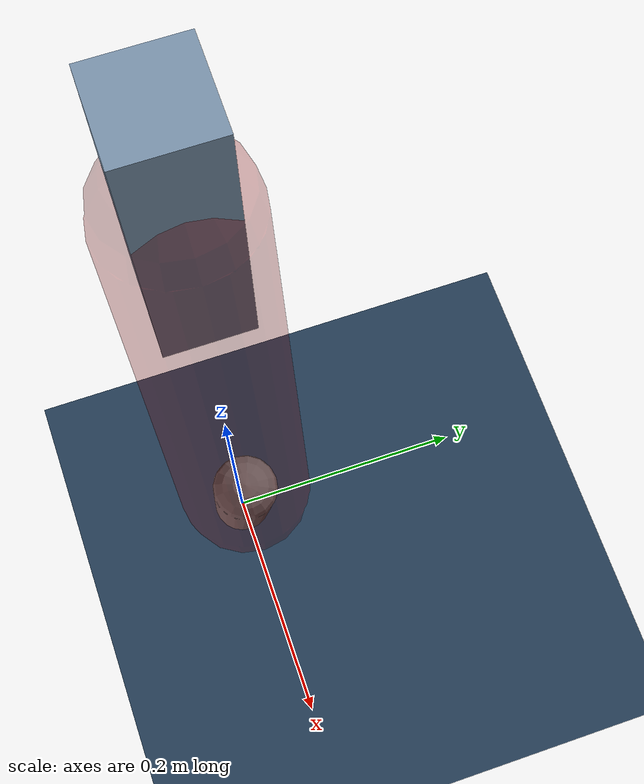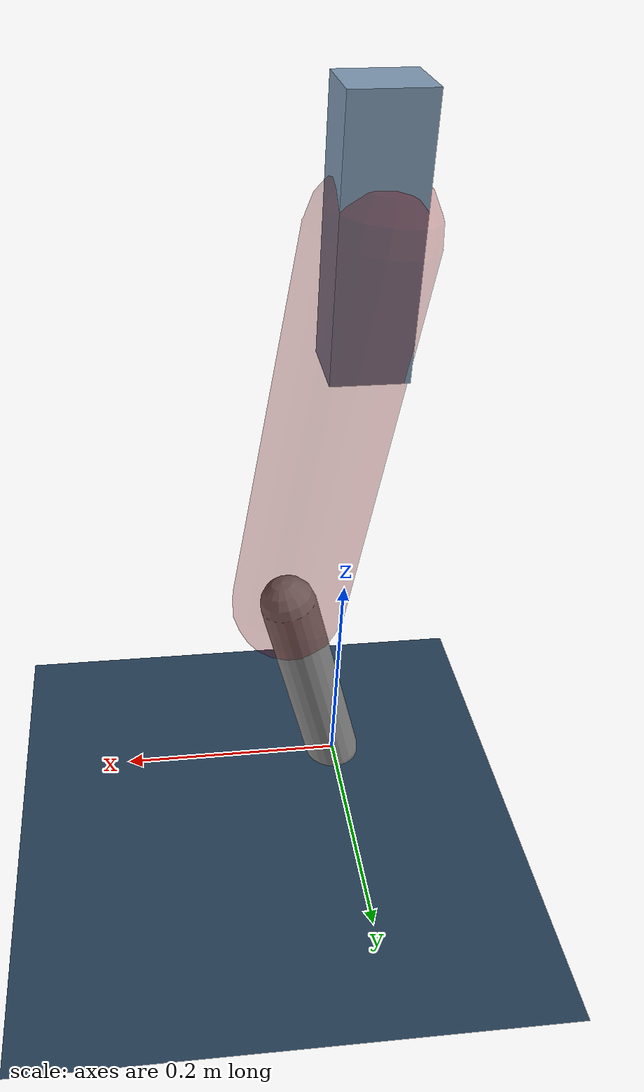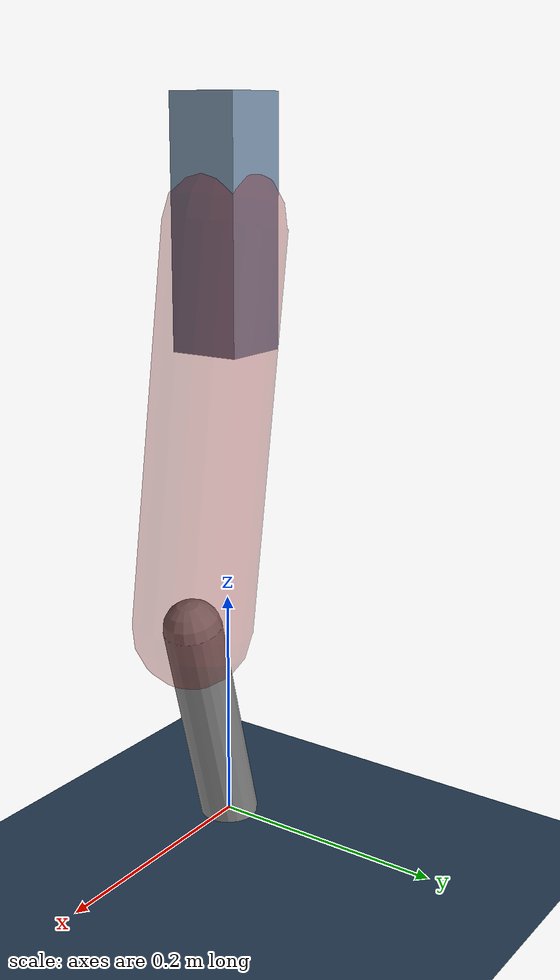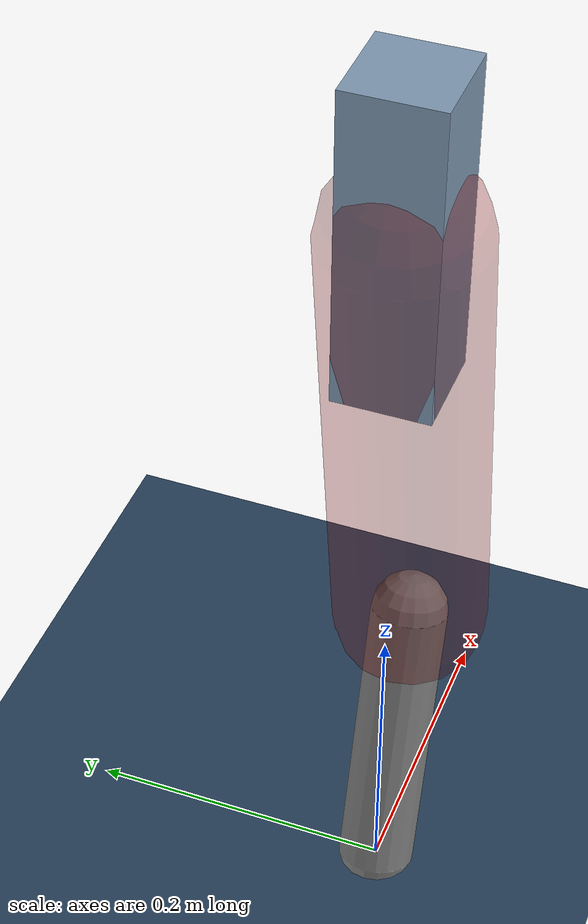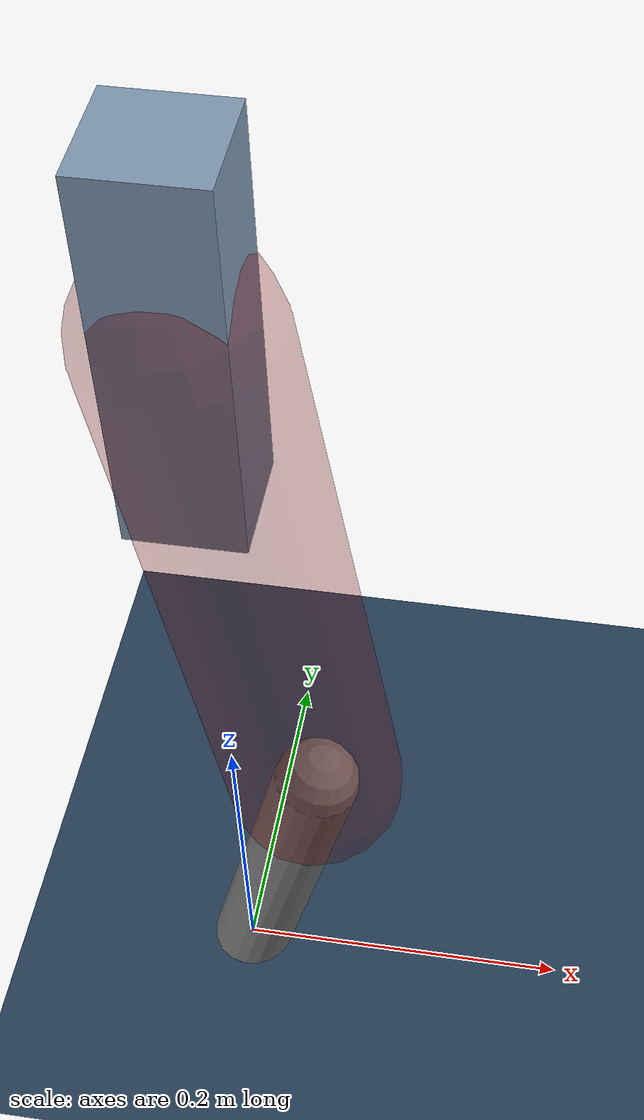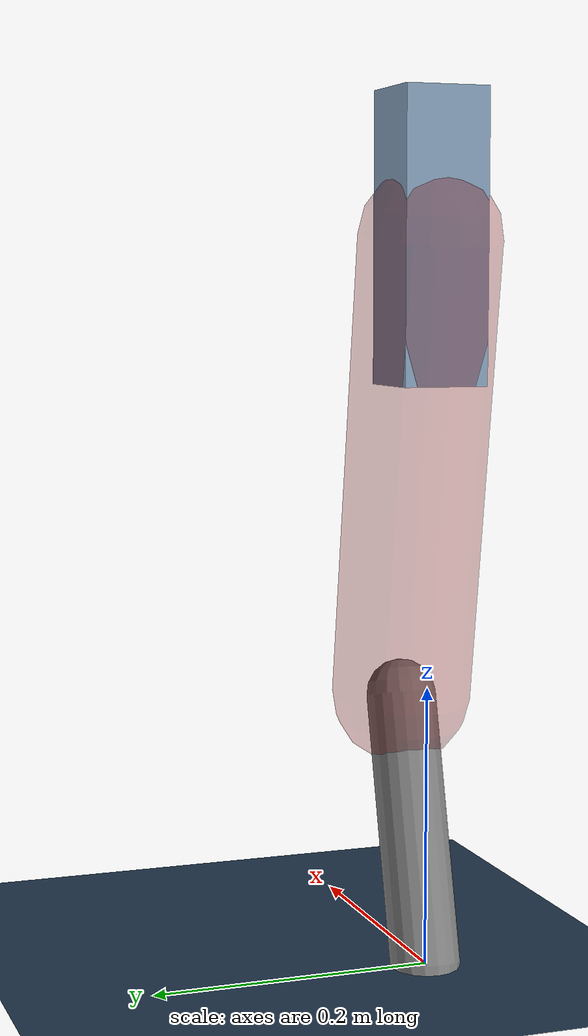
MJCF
<mujoco model="Hopper2D">
	<compiler inertiafromgeom="true" angle="radian" />
	<option timestep="0.001" integrator="implicit" cone="elliptic" solver="Newton" tolerance="1e-10" />

	<default>
		<geom contype="1" conaffinity="1" condim="3" friction="2 0.005 0.0001" solref="0.005 1" />
		<joint limited="true" damping="0.1" />
	</default>

	<asset>
		<texture name="skybox" type="skybox" builtin="gradient" rgb1=".4 .6 .8" rgb2="0 0 0" width="800" height="800" />
		<texture name="grid" type="2d" builtin="checker" rgb1=".1 .2 .3" rgb2=".2 .3 .4" width="300" height="300" mark="edge" markrgb=".2 .3 .4" />
		<material name="ground" texture="grid" texrepeat="1 1" texuniform="true" reflectance="0.1" />
		<material name="leg" rgba="0.5 0.6 0.7 1" />
	</asset>

	<worldbody>

		<geom name="floor" type="plane" size="5 5 0.25" material="ground" />

		<light directional="false" diffuse="0.8 0.8 0.8" specular="0.3 0.3 0.3" pos="0 0 2" dir="0 0 -1" />
		<light mode="targetbodycom" target="base" directional="false" diffuse="0.8 0.8 0.8" specular="0.3 0.3 0.3" pos="0 0 2" dir="0 0 -1" />

		<camera name="fixed" pos="0 -2 1" xyaxes="1 0 0 0 0 1" />
		<camera name="tracking" mode="trackcom" pos="0 -3 1" />

		<body name="root" pos="0 0 0.5118769928960649">
			<joint name="slide_x" type="slide" axis="1 0 0" range="-100 100" />
			<joint name="slide_z" type="slide" axis="0 0 1" range="0 10" />

			<body name="base" pos="0 0 0">
				<geom name="torso" type="box" size="0.03 0.03 0.1" mass="2.507" material="leg" />

				<body name="link1" pos="0 0 0" euler="0 1.4207730240790213 0">
					<joint type="hinge" axis="0 -1 0" pos="0 0 0" name="hinge1" limited="true" range="-3.14 3.14" stiffness="0" damping="0.1" />
					<geom name="thigh" type="capsule" fromto="0 0 0 0.3281840051021988 0 0" size="0.05" rgba="0.5 0 0 0.3" mass="1.0658152142861566" />

					<body name="link2" pos="0.3281840051021988 0 0" euler="0 0.4060510246294505 0">
						<joint type="hinge" axis="0 -1 0" pos="0 0 0" name="hinge2" limited="true" range="-3.14 3.14" stiffness="0" damping="0.1" />
						<geom name="shank" type="capsule" fromto="0 0 0 0.19369298779386612 0 0" size="0.025" mass="0.39555439023509287" />

					</body>
				</body>
			</body>
		</body>
	</worldbody>

	<actuator>
		<motor name="torque1" joint="hinge1" ctrlrange="-62.80537962146212 62.80537962146212" ctrllimited="true" gear="1" />
		<motor name="torque2" joint="hinge2" ctrlrange="-99.55448465813812 99.55448465813812" ctrllimited="true" gear="1" />
	</actuator>
</mujoco>
